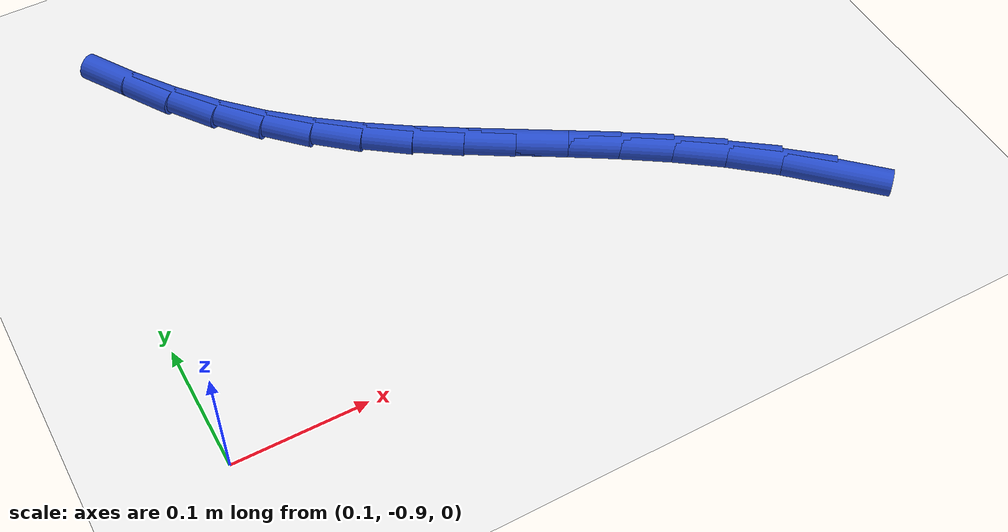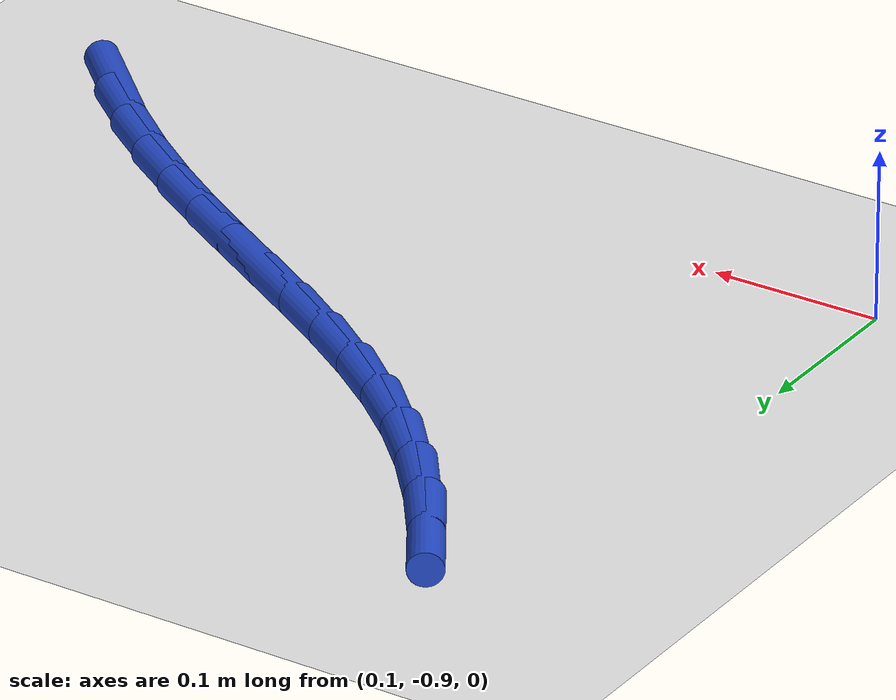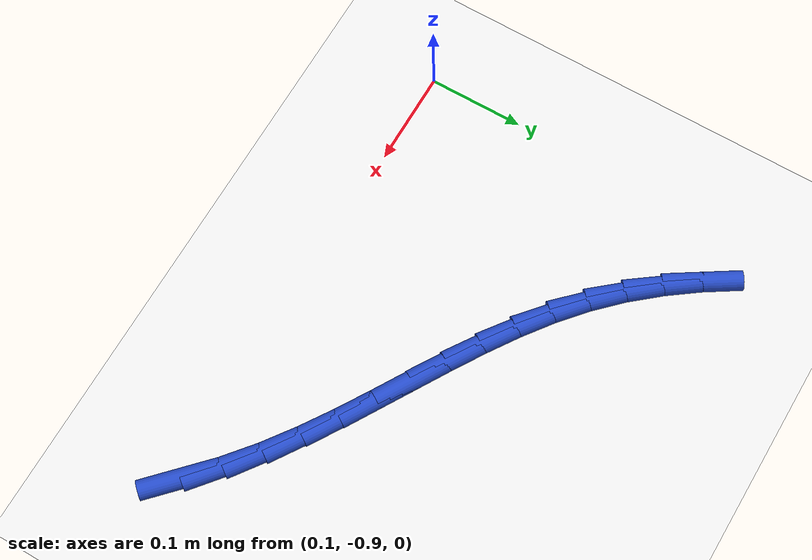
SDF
<sdf version="1.6">
 <world name="default">
  <model name="ground_plane">
   <static>1</static>
   <link name="link">
    <collision name="collision">
     <geometry><plane><normal>0 0 1</normal><size>100 100</size></plane></geometry>
     <surface><friction><ode><mu>100</mu><mu2>50</mu2></ode></friction></surface>
    </collision>
    <visual name="visual">
     <cast_shadows>0</cast_shadows>
     <geometry><plane><normal>0 0 1</normal><size>100 100</size></plane></geometry>
     <material>
      <script><uri>file://media/materials/scripts/gazebo.material</uri><name>Gazebo/WhiteGlow</name></script>
     </material>
    </visual>
   </link>
  </model>
  <model name="line">
   <link name="link_151">
    <pose>0.5870315879334752 -0.8936398563690869 0.01 0 1.57 -0.7607691147675985</pose>
    <collision name="collision">
     <geometry><cylinder><radius>0.01</radius><length>0.08</length></cylinder></geometry>
    </collision>
    <visual name="visual">
     <material>
      <script><name>Gazebo/Blue</name><uri>file://media/materials/scripts/gazebo.material</uri></script>
     </material>
     <geometry><cylinder><radius>0.01</radius><length>0.08</length></cylinder></geometry>
    </visual>
   </link>
   <link name="link_152">
    <pose>0.5572812606754569 -0.8653200309790057 0.01 0 1.57 -0.6881260420750672</pose>
    <collision name="collision">
     <geometry><cylinder><radius>0.01</radius><length>0.08</length></cylinder></geometry>
    </collision>
    <visual name="visual">
     <material>
      <script><name>Gazebo/Blue</name><uri>file://media/materials/scripts/gazebo.material</uri></script>
     </material>
     <geometry><cylinder><radius>0.01</radius><length>0.08</length></cylinder></geometry>
    </visual>
   </link>
   <link name="link_153">
    <pose>0.526088252021352 -0.8396734353877368 0.01 0 1.57 -0.6276880712730644</pose>
    <collision name="collision">
     <geometry><cylinder><radius>0.01</radius><length>0.08</length></cylinder></geometry>
    </collision>
    <visual name="visual">
     <material>
      <script><name>Gazebo/Blue</name><uri>file://media/materials/scripts/gazebo.material</uri></script>
     </material>
     <geometry><cylinder><radius>0.01</radius><length>0.08</length></cylinder></geometry>
    </visual>
   </link>
   <link name="link_154">
    <pose>0.4937800406632817 -0.8162312526764739 0.01 0 1.57 -0.5818524752578116</pose>
    <collision name="collision">
     <geometry><cylinder><radius>0.01</radius><length>0.08</length></cylinder></geometry>
    </collision>
    <visual name="visual">
     <material>
      <script><name>Gazebo/Blue</name><uri>file://media/materials/scripts/gazebo.material</uri></script>
     </material>
     <geometry><cylinder><radius>0.01</radius><length>0.08</length></cylinder></geometry>
    </visual>
   </link>
   <link name="link_155">
    <pose>0.4607075895158652 -0.7944755556366595 0.01 0 1.57 -0.5512332862253796</pose>
    <collision name="collision">
     <geometry><cylinder><radius>0.01</radius><length>0.08</length></cylinder></geometry>
    </collision>
    <visual name="visual">
     <material>
      <script><name>Gazebo/Blue</name><uri>file://media/materials/scripts/gazebo.material</uri></script>
     </material>
     <geometry><cylinder><radius>0.01</radius><length>0.08</length></cylinder></geometry>
    </visual>
   </link>
   <link name="link_156">
    <pose>0.4272218614937196 -0.7738884170597352 0.01 0 1.57 -0.5361936828987496</pose>
    <collision name="collision">
     <geometry><cylinder><radius>0.01</radius><length>0.08</length></cylinder></geometry>
    </collision>
    <visual name="visual">
     <material>
      <script><name>Gazebo/Blue</name><uri>file://media/materials/scripts/gazebo.material</uri></script>
     </material>
     <geometry><cylinder><radius>0.01</radius><length>0.08</length></cylinder></geometry>
    </visual>
   </link>
   <link name="link_157">
    <pose>0.39367381951146285 -0.7539519097371429 0.01 0 1.57 -0.5370560458285408</pose>
    <collision name="collision">
     <geometry><cylinder><radius>0.01</radius><length>0.08</length></cylinder></geometry>
    </collision>
    <visual name="visual">
     <material>
      <script><name>Gazebo/Blue</name><uri>file://media/materials/scripts/gazebo.material</uri></script>
     </material>
     <geometry><cylinder><radius>0.01</radius><length>0.08</length></cylinder></geometry>
    </visual>
   </link>
   <link name="link_158">
    <pose>0.36041442648371275 -0.7341481064603242 0.01 0 1.57 -0.5542150398956438</pose>
    <collision name="collision">
     <geometry><cylinder><radius>0.01</radius><length>0.08</length></cylinder></geometry>
    </collision>
    <visual name="visual">
     <material>
      <script><name>Gazebo/Blue</name><uri>file://media/materials/scripts/gazebo.material</uri></script>
     </material>
     <geometry><cylinder><radius>0.01</radius><length>0.08</length></cylinder></geometry>
    </visual>
   </link>
   <link name="link_159">
    <pose>0.32779464532508645 -0.7139590800207214 0.01 0 1.57 -0.5881347799699166</pose>
    <collision name="collision">
     <geometry><cylinder><radius>0.01</radius><length>0.08</length></cylinder></geometry>
    </collision>
    <visual name="visual">
     <material>
      <script><name>Gazebo/Blue</name><uri>file://media/materials/scripts/gazebo.material</uri></script>
     </material>
     <geometry><cylinder><radius>0.01</radius><length>0.08</length></cylinder></geometry>
    </visual>
   </link>
   <link name="link_160">
    <pose>0.2961654389502032 -0.6928669032097767 0.01 0 1.57 -0.6392084509347636</pose>
    <collision name="collision">
     <geometry><cylinder><radius>0.01</radius><length>0.08</length></cylinder></geometry>
    </collision>
    <visual name="visual">
     <material>
      <script><name>Gazebo/Blue</name><uri>file://media/materials/scripts/gazebo.material</uri></script>
     </material>
     <geometry><cylinder><radius>0.01</radius><length>0.08</length></cylinder></geometry>
    </visual>
   </link>
   <link name="link_161">
    <pose>0.26587777027368004 -0.6703536488189316 0.01 0 1.57 -0.7074581613819743</pose>
    <collision name="collision">
     <geometry><cylinder><radius>0.01</radius><length>0.08</length></cylinder></geometry>
    </collision>
    <visual name="visual">
     <material>
      <script><name>Gazebo/Blue</name><uri>file://media/materials/scripts/gazebo.material</uri></script>
     </material>
     <geometry><cylinder><radius>0.01</radius><length>0.08</length></cylinder></geometry>
    </visual>
   </link>
   <link name="link_162">
    <pose>0.23728260221013495 -0.6459013896396282 0.01 0 1.57 -0.7894721845547559</pose>
    <collision name="collision">
     <geometry><cylinder><radius>0.01</radius><length>0.08</length></cylinder></geometry>
    </collision>
    <visual name="visual">
     <material>
      <script><name>Gazebo/Blue</name><uri>file://media/materials/scripts/gazebo.material</uri></script>
     </material>
     <geometry><cylinder><radius>0.01</radius><length>0.08</length></cylinder></geometry>
    </visual>
   </link>
   <link name="link_163">
    <pose>0.21067955320155604 -0.6190806899443626 0.01 0 1.57 -0.8689920416893067</pose>
    <collision name="collision">
     <geometry><cylinder><radius>0.01</radius><length>0.08</length></cylinder></geometry>
    </collision>
    <visual name="visual">
     <material>
      <script><name>Gazebo/Blue</name><uri>file://media/materials/scripts/gazebo.material</uri></script>
     </material>
     <geometry><cylinder><radius>0.01</radius><length>0.08</length></cylinder></geometry>
    </visual>
   </link>
   <link name="link_164">
    <pose>0.18607212254907202 -0.5899724712067316 0.01 0 1.57 -0.9404762354480084</pose>
    <collision name="collision">
     <geometry><cylinder><radius>0.01</radius><length>0.08</length></cylinder></geometry>
    </collision>
    <visual name="visual">
     <material>
      <script><name>Gazebo/Blue</name><uri>file://media/materials/scripts/gazebo.material</uri></script>
     </material>
     <geometry><cylinder><radius>0.01</radius><length>0.08</length></cylinder></geometry>
    </visual>
   </link>
   <link name="link_165">
    <pose>0.16335787802498214 -0.5588402264099092 0.01 0 1.57 -1.0042401692427443</pose>
    <collision name="collision">
     <geometry><cylinder><radius>0.01</radius><length>0.08</length></cylinder></geometry>
    </collision>
    <visual name="visual">
     <material>
      <script><name>Gazebo/Blue</name><uri>file://media/materials/scripts/gazebo.material</uri></script>
     </material>
     <geometry><cylinder><radius>0.01</radius><length>0.08</length></cylinder></geometry>
    </visual>
   </link>
  </model>
 </world>
</sdf>
